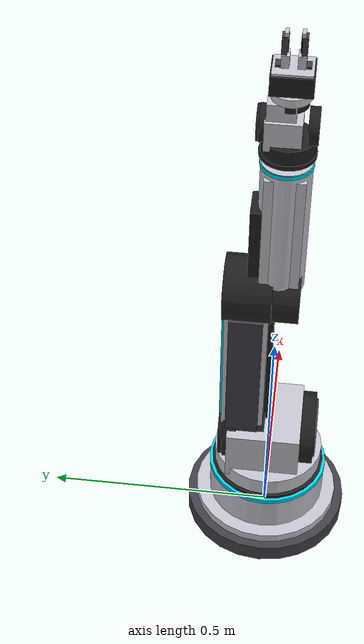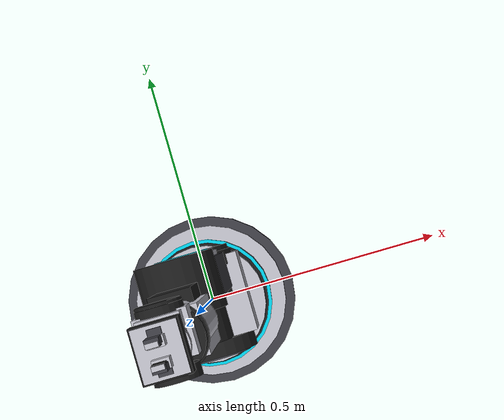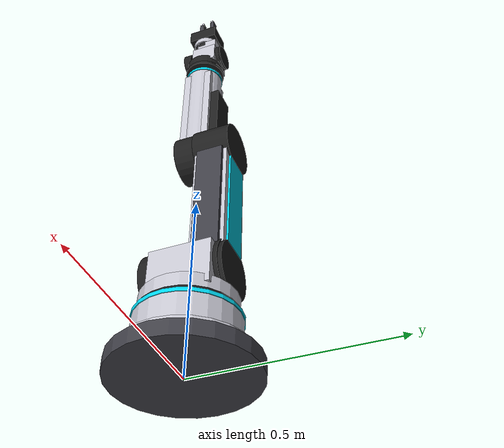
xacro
<?xml version="1.0"?>
<robot xmlns:xacro="http://www.ros.org/wiki/xacro" name="detailed_arm">

  <!--               PROPERTIES & MATERIALS       -->
  <material name="metallic_silver">
    <color rgba="0.78 0.78 0.82 1.0"/>
  </material>

  <material name="matte_black">
    <color rgba="0.12 0.12 0.12 1.0"/>
  </material>

  <material name="accent_cyan">
    <color rgba="0.0 0.85 0.95 1.0"/>
  </material>

  <material name="dark_metal">
    <color rgba="0.25 0.25 0.28 1.0"/>
  </material>

  <material name="rubber_pad">
    <color rgba="0.05 0.05 0.05 1.0"/>
  </material>

  <!--                 BASE LINK                  -->
  <link name="base_link">
    <!-- Base mounting flange plate -->
    <visual>
      <origin xyz="0 0 0.02" rpy="0 0 0"/>
      <geometry>
        <cylinder radius="0.18" length="0.04"/>
      </geometry>
      <material name="dark_metal"/>
    </visual>
    <!-- Chamfered lower ring -->
    <visual>
      <origin xyz="0 0 0.05" rpy="0 0 0"/>
      <geometry>
        <cylinder radius="0.16" length="0.02"/>
      </geometry>
      <material name="metallic_silver"/>
    </visual>
    <!-- Base column pedestal -->
    <visual>
      <origin xyz="0 0 0.10" rpy="0 0 0"/>
      <geometry>
        <cylinder radius="0.13" length="0.08"/>
      </geometry>
      <material name="metallic_silver"/>
    </visual>
    <!-- Base decorative bolt heads (circular pattern) -->
    <visual>
      <origin xyz="0.14 0 0.042" rpy="0 0 0"/>
      <geometry>
        <cylinder radius="0.012" length="0.008"/>
      </geometry>
      <material name="matte_black"/>
    </visual>
    <visual>
      <origin xyz="-0.14 0 0.042" rpy="0 0 0"/>
      <geometry>
        <cylinder radius="0.012" length="0.008"/>
      </geometry>
      <material name="matte_black"/>
    </visual>
    <visual>
      <origin xyz="0 0.14 0.042" rpy="0 0 0"/>
      <geometry>
        <cylinder radius="0.012" length="0.008"/>
      </geometry>
      <material name="matte_black"/>
    </visual>
    <visual>
      <origin xyz="0 -0.14 0.042" rpy="0 0 0"/>
      <geometry>
        <cylinder radius="0.012" length="0.008"/>
      </geometry>
      <material name="matte_black"/>
    </visual>
    <!-- Cyan glow accent indicator ring -->
    <visual>
      <origin xyz="0 0 0.145" rpy="0 0 0"/>
      <geometry>
        <cylinder radius="0.132" length="0.01"/>
      </geometry>
      <material name="accent_cyan"/>
    </visual>
    <!-- Base Top Bearing Mount -->
    <visual>
      <origin xyz="0 0 0.155" rpy="0 0 0"/>
      <geometry>
        <cylinder radius="0.125" length="0.01"/>
      </geometry>
      <material name="matte_black"/>
    </visual>

    <collision>
      <origin xyz="0 0 0.08" rpy="0 0 0"/>
      <geometry>
        <cylinder radius="0.18" length="0.16"/>
      </geometry>
    </collision>

    <inertial>
      <origin xyz="0 0 0.08" rpy="0 0 0"/>
      <mass value="9.5"/>
      <inertia ixx="0.085" ixy="0.0" ixz="0.0" iyy="0.085" iyz="0.0" izz="0.14"/>
    </inertial>
  </link>

  <!--         JOINT 1: BASE YAW ROTATION         -->
  <joint name="joint1" type="revolute">
    <parent link="base_link"/>
    <child link="shoulder_link"/>
    <origin xyz="0 0 0.16" rpy="0 0 0"/>
    <axis xyz="0 0 1"/>
    <limit lower="-3.14159" upper="3.14159" effort="180.0" velocity="3.14"/>
    <dynamics damping="1.5" friction="1.0"/>
  </joint>

  <!--              SHOULDER LINK                 -->
  <link name="shoulder_link">
    <!-- Rotating turntable plate -->
    <visual>
      <origin xyz="0 0 0.02" rpy="0 0 0"/>
      <geometry>
        <cylinder radius="0.12" length="0.04"/>
      </geometry>
      <material name="metallic_silver"/>
    </visual>
    <!-- Shoulder center turret block -->
    <visual>
      <origin xyz="0 0.01 0.08" rpy="0 0 0"/>
      <geometry>
        <box size="0.18 0.16 0.12"/>
      </geometry>
      <material name="metallic_silver"/>
    </visual>
    <!-- Shoulder actuator matte black hub (Left side) -->
    <visual>
      <origin xyz="0 0.085 0.10" rpy="1.5708 0 0"/>
      <geometry>
        <cylinder radius="0.08" length="0.03"/>
      </geometry>
      <material name="matte_black"/>
    </visual>
    <!-- Actuator hub bolt rim (Left side) -->
    <visual>
      <origin xyz="0 0.102 0.10" rpy="1.5708 0 0"/>
      <geometry>
        <cylinder radius="0.065" length="0.005"/>
      </geometry>
      <material name="dark_metal"/>
    </visual>
    <!-- Shoulder actuator matte black hub (Right side) -->
    <visual>
      <origin xyz="0 -0.085 0.10" rpy="1.5708 0 0"/>
      <geometry>
        <cylinder radius="0.08" length="0.03"/>
      </geometry>
      <material name="matte_black"/>
    </visual>
    <visual>
      <origin xyz="0 -0.102 0.10" rpy="1.5708 0 0"/>
      <geometry>
        <cylinder radius="0.065" length="0.005"/>
      </geometry>
      <material name="dark_metal"/>
    </visual>

    <collision>
      <origin xyz="0 0 0.08" rpy="0 0 0"/>
      <geometry>
        <box size="0.20 0.22 0.16"/>
      </geometry>
    </collision>

    <inertial>
      <origin xyz="0 0 0.07" rpy="0 0 0"/>
      <mass value="5.2"/>
      <inertia ixx="0.045" ixy="0.0" ixz="0.0" iyy="0.048" iyz="0.0" izz="0.052"/>
    </inertial>
  </link>

  <!--        JOINT 2: SHOULDER PITCH ROTATION    -->
  <joint name="joint2" type="revolute">
    <parent link="shoulder_link"/>
    <child link="upper_arm_link"/>
    <origin xyz="0 0.06 0.10" rpy="0 0 0"/>
    <axis xyz="0 1 0"/>
    <limit lower="-2.0944" upper="2.0944" effort="160.0" velocity="2.5"/>
    <dynamics damping="1.5" friction="1.0"/>
  </joint>

  <!--              UPPER ARM LINK                -->
  <link name="upper_arm_link">
    <!-- Joint pivot cylinder hub -->
    <visual>
      <origin xyz="0 0 0" rpy="1.5708 0 0"/>
      <geometry>
        <cylinder radius="0.075" length="0.10"/>
      </geometry>
      <material name="matte_black"/>
    </visual>
    <!-- Main twin-beam structural arm body -->
    <visual>
      <origin xyz="0 0 0.20" rpy="0 0 0"/>
      <geometry>
        <box size="0.11 0.09 0.36"/>
      </geometry>
      <material name="metallic_silver"/>
    </visual>
    <!-- Chamfered side reinforcement rib (Front) -->
    <visual>
      <origin xyz="0.058 0 0.20" rpy="0 0 0"/>
      <geometry>
        <box size="0.015 0.07 0.32"/>
      </geometry>
      <material name="dark_metal"/>
    </visual>
    <!-- Chamfered side reinforcement rib (Back) -->
    <visual>
      <origin xyz="-0.058 0 0.20" rpy="0 0 0"/>
      <geometry>
        <box size="0.015 0.07 0.32"/>
      </geometry>
      <material name="dark_metal"/>
    </visual>
    <!-- Decorative side conduit duct -->
    <visual>
      <origin xyz="0 -0.048 0.20" rpy="0 0 0"/>
      <geometry>
        <box size="0.06 0.015 0.30"/>
      </geometry>
      <material name="matte_black"/>
    </visual>
    <!-- Cyan industrial stripe -->
    <visual>
      <origin xyz="0 0.048 0.20" rpy="0 0 0"/>
      <geometry>
        <box size="0.08 0.005 0.28"/>
      </geometry>
      <material name="accent_cyan"/>
    </visual>
    <!-- Upper elbow actuator housing -->
    <visual>
      <origin xyz="0 0 0.40" rpy="1.5708 0 0"/>
      <geometry>
        <cylinder radius="0.07" length="0.10"/>
      </geometry>
      <material name="matte_black"/>
    </visual>

    <collision>
      <origin xyz="0 0 0.20" rpy="0 0 0"/>
      <geometry>
        <box size="0.13 0.12 0.44"/>
      </geometry>
    </collision>

    <inertial>
      <origin xyz="0 0 0.20" rpy="0 0 0"/>
      <mass value="4.8"/>
      <inertia ixx="0.072" ixy="0.0" ixz="0.0" iyy="0.072" iyz="0.0" izz="0.018"/>
    </inertial>
  </link>

  <!--         JOINT 3: ELBOW PITCH ROTATION      -->
  <joint name="joint3" type="revolute">
    <parent link="upper_arm_link"/>
    <child link="forearm_link"/>
    <origin xyz="0 -0.06 0.40" rpy="0 0 0"/>
    <axis xyz="0 1 0"/>
    <limit lower="-2.6179" upper="2.6179" effort="120.0" velocity="2.5"/>
    <dynamics damping="1.2" friction="0.8"/>
  </joint>

  <!--               FOREARM LINK                 -->
  <link name="forearm_link">
    <!-- Elbow pivot cylinder hub -->
    <visual>
      <origin xyz="0 0 0" rpy="1.5708 0 0"/>
      <geometry>
        <cylinder radius="0.065" length="0.09"/>
      </geometry>
      <material name="matte_black"/>
    </visual>
    <!-- Forearm main structural column -->
    <visual>
      <origin xyz="0 0 0.175" rpy="0 0 0"/>
      <geometry>
        <cylinder radius="0.05" length="0.30"/>
      </geometry>
      <material name="metallic_silver"/>
    </visual>
    <!-- Forearm structural side casings -->
    <visual>
      <origin xyz="0 0 0.175" rpy="0 0 0"/>
      <geometry>
        <box size="0.09 0.08 0.26"/>
      </geometry>
      <material name="metallic_silver"/>
    </visual>
    <!-- Forearm rotary actuator motor pack -->
    <visual>
      <origin xyz="0 0.048 0.14" rpy="0 0 0"/>
      <geometry>
        <box size="0.07 0.03 0.16"/>
      </geometry>
      <material name="matte_black"/>
    </visual>
    <!-- Forearm accent indicator ring -->
    <visual>
      <origin xyz="0 0 0.32" rpy="0 0 0"/>
      <geometry>
        <cylinder radius="0.052" length="0.008"/>
      </geometry>
      <material name="accent_cyan"/>
    </visual>
    <!-- Forearm top flange -->
    <visual>
      <origin xyz="0 0 0.345" rpy="0 0 0"/>
      <geometry>
        <cylinder radius="0.055" length="0.01"/>
      </geometry>
      <material name="matte_black"/>
    </visual>

    <collision>
      <origin xyz="0 0 0.175" rpy="0 0 0"/>
      <geometry>
        <box size="0.11 0.10 0.37"/>
      </geometry>
    </collision>

    <inertial>
      <origin xyz="0 0 0.175" rpy="0 0 0"/>
      <mass value="3.4"/>
      <inertia ixx="0.042" ixy="0.0" ixz="0.0" iyy="0.042" iyz="0.0" izz="0.009"/>
    </inertial>
  </link>

  <!--         JOINT 4: FOREARM / WRIST 1 ROLL    -->
  <joint name="joint4" type="revolute">
    <parent link="forearm_link"/>
    <child link="wrist_1_link"/>
    <origin xyz="0 0 0.35" rpy="0 0 0"/>
    <axis xyz="0 0 1"/>
    <limit lower="-3.14159" upper="3.14159" effort="60.0" velocity="3.14"/>
    <dynamics damping="0.8" friction="0.5"/>
  </joint>

  <!--               WRIST 1 LINK                 -->
  <link name="wrist_1_link">
    <!-- Bottom rotating plate -->
    <visual>
      <origin xyz="0 0 0.015" rpy="0 0 0"/>
      <geometry>
        <cylinder radius="0.052" length="0.03"/>
      </geometry>
      <material name="matte_black"/>
    </visual>
    <!-- Wrist 1 pivot block -->
    <visual>
      <origin xyz="0 0.01 0.05" rpy="0 0 0"/>
      <geometry>
        <box size="0.08 0.07 0.06"/>
      </geometry>
      <material name="metallic_silver"/>
    </visual>
    <!-- Lateral wrist pitch motor caps -->
    <visual>
      <origin xyz="0 0.045 0.055" rpy="1.5708 0 0"/>
      <geometry>
        <cylinder radius="0.036" length="0.02"/>
      </geometry>
      <material name="matte_black"/>
    </visual>
    <visual>
      <origin xyz="0 -0.045 0.055" rpy="1.5708 0 0"/>
      <geometry>
        <cylinder radius="0.036" length="0.02"/>
      </geometry>
      <material name="matte_black"/>
    </visual>

    <collision>
      <origin xyz="0 0 0.045" rpy="0 0 0"/>
      <geometry>
        <box size="0.09 0.11 0.09"/>
      </geometry>
    </collision>

    <inertial>
      <origin xyz="0 0 0.045" rpy="0 0 0"/>
      <mass value="1.6"/>
      <inertia ixx="0.007" ixy="0.0" ixz="0.0" iyy="0.007" iyz="0.0" izz="0.005"/>
    </inertial>
  </link>

  <!--        JOINT 5: WRIST 2 PITCH ROTATION     -->
  <joint name="joint5" type="revolute">
    <parent link="wrist_1_link"/>
    <child link="wrist_2_link"/>
    <origin xyz="0 0.03 0.055" rpy="0 0 0"/>
    <axis xyz="0 1 0"/>
    <limit lower="-2.0944" upper="2.0944" effort="40.0" velocity="3.14"/>
    <dynamics damping="0.5" friction="0.3"/>
  </joint>

  <!--               WRIST 2 LINK                 -->
  <link name="wrist_2_link">
    <!-- Pitch pivot cylinder hub -->
    <visual>
      <origin xyz="0 0 0" rpy="1.5708 0 0"/>
      <geometry>
        <cylinder radius="0.035" length="0.06"/>
      </geometry>
      <material name="matte_black"/>
    </visual>
    <!-- Wrist 2 structural link body -->
    <visual>
      <origin xyz="0 -0.015 0.035" rpy="0 0 0"/>
      <geometry>
        <box size="0.065 0.055 0.05"/>
      </geometry>
      <material name="metallic_silver"/>
    </visual>
    <!-- Tool roll motor collar -->
    <visual>
      <origin xyz="0 -0.03 0.055" rpy="0 0 0"/>
      <geometry>
        <cylinder radius="0.034" length="0.02"/>
      </geometry>
      <material name="matte_black"/>
    </visual>

    <collision>
      <origin xyz="0 -0.015 0.03" rpy="0 0 0"/>
      <geometry>
        <box size="0.075 0.07 0.07"/>
      </geometry>
    </collision>

    <inertial>
      <origin xyz="0 -0.015 0.03" rpy="0 0 0"/>
      <mass value="1.1"/>
      <inertia ixx="0.003" ixy="0.0" ixz="0.0" iyy="0.003" iyz="0.0" izz="0.002"/>
    </inertial>
  </link>

  <!--         JOINT 6: WRIST 3 ROLL ROTATION     -->
  <joint name="joint6" type="revolute">
    <parent link="wrist_2_link"/>
    <child link="wrist_3_link"/>
    <origin xyz="0 -0.03 0.06" rpy="0 0 0"/>
    <axis xyz="0 0 1"/>
    <limit lower="-3.14159" upper="3.14159" effort="25.0" velocity="3.14"/>
    <dynamics damping="0.3" friction="0.2"/>
  </joint>

  <!--               WRIST 3 LINK                 -->
  <link name="wrist_3_link">
    <!-- Rotating tool flange plate -->
    <visual>
      <origin xyz="0 0 0.008" rpy="0 0 0"/>
      <geometry>
        <cylinder radius="0.038" length="0.016"/>
      </geometry>
      <material name="metallic_silver"/>
    </visual>
    <!-- Flange center locating boss -->
    <visual>
      <origin xyz="0 0 0.018" rpy="0 0 0"/>
      <geometry>
        <cylinder radius="0.02" length="0.006"/>
      </geometry>
      <material name="dark_metal"/>
    </visual>
    <!-- Flange mounting bolt pattern (4 bolts) -->
    <visual>
      <origin xyz="0.025 0 0.017" rpy="0 0 0"/>
      <geometry>
        <cylinder radius="0.004" length="0.004"/>
      </geometry>
      <material name="matte_black"/>
    </visual>
    <visual>
      <origin xyz="-0.025 0 0.017" rpy="0 0 0"/>
      <geometry>
        <cylinder radius="0.004" length="0.004"/>
      </geometry>
      <material name="matte_black"/>
    </visual>
    <visual>
      <origin xyz="0 0.025 0.017" rpy="0 0 0"/>
      <geometry>
        <cylinder radius="0.004" length="0.004"/>
      </geometry>
      <material name="matte_black"/>
    </visual>
    <visual>
      <origin xyz="0 -0.025 0.017" rpy="0 0 0"/>
      <geometry>
        <cylinder radius="0.004" length="0.004"/>
      </geometry>
      <material name="matte_black"/>
    </visual>

    <collision>
      <origin xyz="0 0 0.01" rpy="0 0 0"/>
      <geometry>
        <cylinder radius="0.04" length="0.02"/>
      </geometry>
    </collision>

    <inertial>
      <origin xyz="0 0 0.01" rpy="0 0 0"/>
      <mass value="0.45"/>
      <inertia ixx="0.001" ixy="0.0" ixz="0.0" iyy="0.001" iyz="0.0" izz="0.001"/>
    </inertial>
  </link>

  <!--        FIXED GRIPPER MOUNT JOINT           -->
  <joint name="gripper_mount_joint" type="fixed">
    <parent link="wrist_3_link"/>
    <child link="gripper_base_link"/>
    <origin xyz="0 0 0.02" rpy="0 0 0"/>
  </joint>

  <!--           GRIPPER BASE LINK                -->
  <link name="gripper_base_link">
    <!-- Main gripper actuator body -->
    <visual>
      <origin xyz="0 0 0.02" rpy="0 0 0"/>
      <geometry>
        <box size="0.07 0.08 0.04"/>
      </geometry>
      <material name="matte_black"/>
    </visual>
    <!-- Gripper faceplate in metallic silver -->
    <visual>
      <origin xyz="0 0 0.042" rpy="0 0 0"/>
      <geometry>
        <box size="0.065 0.075 0.005"/>
      </geometry>
      <material name="metallic_silver"/>
    </visual>
    <!-- Left guide rail channel -->
    <visual>
      <origin xyz="0 0.025 0.046" rpy="0 0 0"/>
      <geometry>
        <box size="0.02 0.015 0.006"/>
      </geometry>
      <material name="dark_metal"/>
    </visual>
    <!-- Right guide rail channel -->
    <visual>
      <origin xyz="0 -0.025 0.046" rpy="0 0 0"/>
      <geometry>
        <box size="0.02 0.015 0.006"/>
      </geometry>
      <material name="dark_metal"/>
    </visual>
    <!-- Status LED dot -->
    <visual>
      <origin xyz="0.028 0 0.025" rpy="0 0 0"/>
      <geometry>
        <cylinder radius="0.004" length="0.01"/>
      </geometry>
      <material name="accent_cyan"/>
    </visual>

    <collision>
      <origin xyz="0 0 0.025" rpy="0 0 0"/>
      <geometry>
        <box size="0.075 0.085 0.05"/>
      </geometry>
    </collision>

    <inertial>
      <origin xyz="0 0 0.02" rpy="0 0 0"/>
      <mass value="0.55"/>
      <inertia ixx="0.001" ixy="0.0" ixz="0.0" iyy="0.001" iyz="0.0" izz="0.001"/>
    </inertial>
  </link>

  <!--   FINGER JOINT (ACTIVE: LEFT FINGER)       -->
  <joint name="finger_joint" type="prismatic">
    <parent link="gripper_base_link"/>
    <child link="left_finger_link"/>
    <origin xyz="0 0.01 0.045" rpy="0 0 0"/>
    <axis xyz="0 1 0"/>
    <limit lower="0.0" upper="0.04" effort="30.0" velocity="0.1"/>
    <dynamics damping="0.2" friction="0.1"/>
  </joint>

  <!--              LEFT FINGER LINK              -->
  <link name="left_finger_link">
    <!-- Finger slider carrier -->
    <visual>
      <origin xyz="0 0.005 0.012" rpy="0 0 0"/>
      <geometry>
        <box size="0.025 0.015 0.025"/>
      </geometry>
      <material name="metallic_silver"/>
    </visual>
    <!-- Finger claw arm -->
    <visual>
      <origin xyz="0 0.008 0.04" rpy="0 0 0"/>
      <geometry>
        <box size="0.02 0.01 0.04"/>
      </geometry>
      <material name="dark_metal"/>
    </visual>
    <!-- Soft rubber grip friction pad -->
    <visual>
      <origin xyz="0 0.002 0.045" rpy="0 0 0"/>
      <geometry>
        <box size="0.018 0.003 0.03"/>
      </geometry>
      <material name="rubber_pad"/>
    </visual>
    <!-- Chamfered claw tip -->
    <visual>
      <origin xyz="0 0.005 0.062" rpy="0 0 0"/>
      <geometry>
        <box size="0.018 0.007 0.012"/>
      </geometry>
      <material name="metallic_silver"/>
    </visual>

    <collision>
      <origin xyz="0 0.006 0.038" rpy="0 0 0"/>
      <geometry>
        <box size="0.025 0.018 0.065"/>
      </geometry>
    </collision>

    <inertial>
      <origin xyz="0 0.006 0.035" rpy="0 0 0"/>
      <mass value="0.12"/>
      <inertia ixx="0.0001" ixy="0.0" ixz="0.0" iyy="0.0001" iyz="0.0" izz="0.00005"/>
    </inertial>
  </link>

  <!--   FINGER JOINT MIMIC (PASSIVE: RIGHT FINGER)-->
  <joint name="finger_joint_mimic" type="prismatic">
    <parent link="gripper_base_link"/>
    <child link="right_finger_link"/>
    <origin xyz="0 -0.01 0.045" rpy="0 0 0"/>
    <axis xyz="0 -1 0"/>
    <limit lower="0.0" upper="0.04" effort="30.0" velocity="0.1"/>
    <mimic joint="finger_joint" multiplier="1.0" offset="0.0"/>
    <dynamics damping="0.2" friction="0.1"/>
  </joint>

  <!--              RIGHT FINGER LINK             -->
  <link name="right_finger_link">
    <!-- Finger slider carrier -->
    <visual>
      <origin xyz="0 -0.005 0.012" rpy="0 0 0"/>
      <geometry>
        <box size="0.025 0.015 0.025"/>
      </geometry>
      <material name="metallic_silver"/>
    </visual>
    <!-- Finger claw arm -->
    <visual>
      <origin xyz="0 -0.008 0.04" rpy="0 0 0"/>
      <geometry>
        <box size="0.02 0.01 0.04"/>
      </geometry>
      <material name="dark_metal"/>
    </visual>
    <!-- Soft rubber grip friction pad -->
    <visual>
      <origin xyz="0 -0.002 0.045" rpy="0 0 0"/>
      <geometry>
        <box size="0.018 0.003 0.03"/>
      </geometry>
      <material name="rubber_pad"/>
    </visual>
    <!-- Chamfered claw tip -->
    <visual>
      <origin xyz="0 -0.005 0.062" rpy="0 0 0"/>
      <geometry>
        <box size="0.018 0.007 0.012"/>
      </geometry>
      <material name="metallic_silver"/>
    </visual>

    <collision>
      <origin xyz="0 -0.006 0.038" rpy="0 0 0"/>
      <geometry>
        <box size="0.025 0.018 0.065"/>
      </geometry>
    </collision>

    <inertial>
      <origin xyz="0 -0.006 0.035" rpy="0 0 0"/>
      <mass value="0.12"/>
      <inertia ixx="0.0001" ixy="0.0" ixz="0.0" iyy="0.0001" iyz="0.0" izz="0.00005"/>
    </inertial>
  </link>

  <!-- Tool Center Point (TCP) virtual frame for end-effector planning -->
  <link name="tcp_link"/>
  <joint name="tcp_joint" type="fixed">
    <parent link="gripper_base_link"/>
    <child link="tcp_link"/>
    <origin xyz="0 0 0.09" rpy="0 0 0"/>
  </joint>

</robot>
